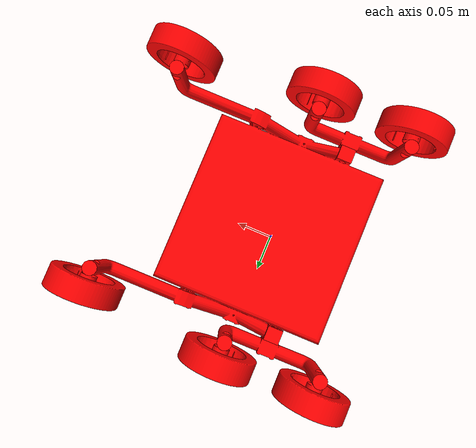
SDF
<?xml version="1.0" encoding="utf-8"?>
<sdf version="1.5">
  <model name="Swarm_rocker_bogie">
    <pose>0 0 0.126373635434956 0 0 0</pose>
    <plugin name="clock" filename="libgz_clock.so">
      <topic>/gazebo/frc/time</topic>
    </plugin>
    <link name="b">
      <gravity>1</gravity>
      <self_collide>0</self_collide>
      <pose>0.0148104090723811 -0.00163168364829588 0.0199908082385083 -1.5707963267949 0 1.5707963267949</pose>
      <must_be_base_link>1</must_be_base_link>
      <velocity_decay>
        <linear>0</linear>
        <angular>0</angular>
      </velocity_decay>
      <inertial>
        <mass>7.2356492385504</mass>
        <pose>0 0 0 0 0 0</pose>
        <inertia>
          <ixx>0.0267670908195039</ixx>
          <ixy>1.53659995127757E-05</ixy>
          <ixz>8.55041313934179E-06</ixz>
          <iyy>0.065736382702074</iyy>
          <iyz>0.0015539855739102</iyz>
          <izz>0.0425441069655975</izz>
        </inertia>
      </inertial>
      <collision name="b_collision">
        <pose>0.152453905827921 -0.0302156363033254 -2.14221795320658 0 0 0</pose>
        <geometry>
          <mesh>
            <scale>1 1 1</scale>
            <uri>model://Swarm_rocker_bogie/meshes/b_col.STL</uri>
          </mesh>
        </geometry>
        <surface>
          <contact>
            <ode />
          </contact>
          <friction>
            <ode>
              <mu>0</mu>
              <mu2>0</mu2>
            </ode>
          </friction>
        </surface>
      </collision>
      <visual name="b_visual">
        <pose>0.152453905827921 -0.0302156363033254 -2.14221795320658 0 0 0</pose>
        <material>
          <ambient>1 0 0 1</ambient>
          <diffuse>1 0 0 1</diffuse>
        </material>
        <geometry>
          <mesh>
            <scale>1 1 1</scale>
            <uri>model://Swarm_rocker_bogie/meshes/b.STL</uri>
          </mesh>
        </geometry>
      </visual>
    </link>
    <link name="rocker1">
      <gravity>1</gravity>
      <self_collide>0</self_collide>
      <pose>-0.0400993551230209 -0.125631922733185 0.0504696530971495 -1.5707963267949 0 1.5707963267949</pose>
      <must_be_base_link>0</must_be_base_link>
      <velocity_decay>
        <linear>0</linear>
        <angular>0</angular>
      </velocity_decay>
      <inertial>
        <mass>0.285057110437184</mass>
        <pose>0 0 0 0 0 0</pose>
        <inertia>
          <ixx>0.000610157709332902</ixx>
          <ixy>2.59133264708521E-10</ixy>
          <ixz>4.18845911356162E-12</ixz>
          <iyy>0.000492155340392255</iyy>
          <iyz>8.78414871051108E-06</iyz>
          <izz>0.000126413081570755</izz>
        </inertia>
      </inertial>
      <collision name="rocker1_collision">
        <pose>0.276454144912809 0.0002632085553158 -2.19712771740198 0 0 0</pose>
        <geometry>
          <mesh>
            <scale>1 1 1</scale>
            <uri>model://Swarm_rocker_bogie/meshes/rocker1_col.STL</uri>
          </mesh>
        </geometry>
        <surface>
          <contact>
            <ode />
          </contact>
          <friction>
            <ode>
              <mu>0</mu>
              <mu2>0</mu2>
            </ode>
          </friction>
        </surface>
      </collision>
      <visual name="rocker1_visual">
        <pose>0.276454144912809 0.0002632085553158 -2.19712771740198 0 0 0</pose>
        <material>
          <ambient>1 0 0 1</ambient>
          <diffuse>1 0 0 1</diffuse>
        </material>
        <geometry>
          <mesh>
            <scale>1 1 1</scale>
            <uri>model://Swarm_rocker_bogie/meshes/rocker1.STL</uri>
          </mesh>
        </geometry>
      </visual>
    </link>
    <joint name="b-rocker1" type="revolute">
      <parent>b</parent>
      <child>rocker1</child>
      <pose>2.22044604925031E-16 0.0169527314428989 -0.000406924873752157 0 0 0</pose>
      <axis>
        <xyz>1 0 0</xyz>
        <dynamics>
          <damping>0</damping>
          <friction>0</friction>
        </dynamics>
        <limit>
          <upper>0</upper>
          <lower>0</lower>
          <effort>1</effort>
        </limit>
      </axis>
    </joint>
    <link name="rocker2">
      <gravity>1</gravity>
      <self_collide>0</self_collide>
      <pose>-0.0407351751930216 0.122368077312239 0.0501480848266612 -1.5707963267949 0 1.5707963267949</pose>
      <must_be_base_link>0</must_be_base_link>
      <velocity_decay>
        <linear>0</linear>
        <angular>0</angular>
      </velocity_decay>
      <inertial>
        <mass>0.285057103363602</mass>
        <pose>0 0 0 0 0 0</pose>
        <inertia>
          <ixx>0.00061015769502788</ixx>
          <ixy>2.59610103472399E-10</ixy>
          <ixz>9.06369873589311E-12</ixz>
          <iyy>0.000491424184306851</iyy>
          <iyz>1.85482244309908E-05</iyz>
          <izz>0.00012714422308182</izz>
        </inertia>
      </inertial>
      <collision name="rocker2_collision">
        <pose>0.028454144867386 -5.83597151725061E-05 -2.19776353747198 0 0 0</pose>
        <geometry>
          <mesh>
            <scale>1 1 1</scale>
            <uri>model://Swarm_rocker_bogie/meshes/rocker2_col.STL</uri>
          </mesh>
        </geometry>
        <surface>
          <contact>
            <ode />
          </contact>
          <friction>
            <ode>
              <mu>0</mu>
              <mu2>0</mu2>
            </ode>
          </friction>
        </surface>
      </collision>
      <visual name="rocker2_visual">
        <pose>0.028454144867386 -5.83597151725061E-05 -2.19776353747198 0 0 0</pose>
        <material>
          <ambient>1 0 0 1</ambient>
          <diffuse>1 0 0 1</diffuse>
        </material>
        <geometry>
          <mesh>
            <scale>1 1 1</scale>
            <uri>model://Swarm_rocker_bogie/meshes/rocker2.STL</uri>
          </mesh>
        </geometry>
      </visual>
    </link>
    <joint name="b-rocker2" type="revolute">
      <parent>b</parent>
      <child>rocker2</child>
      <pose>2.77555756156289E-17 0.0169357874937826 -0.000860104389454719 0 0 0</pose>
      <axis>
        <xyz>1 8.67361737988403E-16 0</xyz>
        <dynamics>
          <damping>0</damping>
          <friction>0</friction>
        </dynamics>
        <limit>
          <upper>0</upper>
          <lower>0</lower>
          <effort>1</effort>
        </limit>
      </axis>
    </joint>
    <link name="W3">
      <gravity>1</gravity>
      <self_collide>0</self_collide>
      <pose>0.00903318787032381 -0.144940145252918 0.0872015375891093 -1.5707963267949 0 1.5707963267949</pose>
      <must_be_base_link>0</must_be_base_link>
      <velocity_decay>
        <linear>0</linear>
        <angular>0</angular>
      </velocity_decay>
      <inertial>
        <mass>0.0608615422370916</mass>
        <pose>0 0 0 0 0 0</pose>
        <inertia>
          <ixx>6.09504641301841E-05</ixx>
          <ixy>8.12714228438774E-12</ixy>
          <ixz>2.13553579959487E-11</ixz>
          <iyy>3.32741641080832E-05</iyy>
          <iyz>9.04600273464406E-11</iyz>
          <izz>3.32742375335139E-05</izz>
        </inertia>
      </inertial>
      <collision name="W3_collision">
        <pose>0.295762367432542 0.0369950930472756 -2.14799517440863 0 0 0</pose>
        <geometry>
          <mesh>
            <scale>1 1 1</scale>
            <uri>model://Swarm_rocker_bogie/meshes/W3_col.STL</uri>
          </mesh>
        </geometry>
        <surface>
          <contact>
            <ode />
          </contact>
          <friction>
            <ode>
              <mu>0</mu>
              <mu2>0</mu2>
            </ode>
          </friction>
        </surface>
      </collision>
      <visual name="W3_visual">
        <pose>0.295762367432542 0.0369950930472756 -2.14799517440863 0 0 0</pose>
        <material>
          <ambient>1 0 0 1</ambient>
          <diffuse>1 0 0 1</diffuse>
        </material>
        <geometry>
          <mesh>
            <scale>1 1 1</scale>
            <uri>model://Swarm_rocker_bogie/meshes/W3.STL</uri>
          </mesh>
        </geometry>
      </visual>
    </link>
    <joint name="rocker1-W3" type="revolute">
      <parent>rocker1</parent>
      <child>W3</child>
      <pose>3.33066907387547E-16 -9.46985707836467E-08 -1.64010659720049E-07 0 0 0</pose>
      <axis>
        <xyz>1 0 0</xyz>
        <dynamics>
          <damping>0</damping>
          <friction>0</friction>
        </dynamics>
        <limit>
          <upper>0</upper>
          <lower>0</lower>
          <effort>1</effort>
        </limit>
      </axis>
    </joint>
    <link name="6">
      <gravity>1</gravity>
      <self_collide>0</self_collide>
      <pose>-0.0909380162156253 -0.144940145252918 0.0848018806124958 -1.5707963267949 0 1.5707963267949</pose>
      <must_be_base_link>0</must_be_base_link>
      <velocity_decay>
        <linear>0</linear>
        <angular>0</angular>
      </velocity_decay>
      <inertial>
        <mass>0.0608615422370905</mass>
        <pose>0 0 0 0 0 0</pose>
        <inertia>
          <ixx>6.09504641301837E-05</ixx>
          <ixy>8.12714232985873E-12</ixy>
          <ixz>2.13553579132461E-11</ixz>
          <iyy>3.32741641080829E-05</iyy>
          <iyz>9.04600271716098E-11</iyz>
          <izz>3.32742375335137E-05</izz>
        </inertia>
      </inertial>
      <collision name="6_collision">
        <pose>0.295762367432542 0.0345954360706621 -2.24796637849458 0 0 0</pose>
        <geometry>
          <mesh>
            <scale>1 1 1</scale>
            <uri>model://Swarm_rocker_bogie/meshes/6_col.STL</uri>
          </mesh>
        </geometry>
        <surface>
          <contact>
            <ode />
          </contact>
          <friction>
            <ode>
              <mu>0</mu>
              <mu2>0</mu2>
            </ode>
          </friction>
        </surface>
      </collision>
      <visual name="6_visual">
        <pose>0.295762367432542 0.0345954360706621 -2.24796637849458 0 0 0</pose>
        <material>
          <ambient>1 0 0 1</ambient>
          <diffuse>1 0 0 1</diffuse>
        </material>
        <geometry>
          <mesh>
            <scale>1 1 1</scale>
            <uri>model://Swarm_rocker_bogie/meshes/6.STL</uri>
          </mesh>
        </geometry>
      </visual>
    </link>
    <joint name="rocker1-6" type="revolute">
      <parent>rocker1</parent>
      <child>6</child>
      <pose>2.22044604925031E-16 -9.46985711305914E-08 -1.64010659720049E-07 0 0 0</pose>
      <axis>
        <xyz>1 0 0</xyz>
        <dynamics>
          <damping>0</damping>
          <friction>0</friction>
        </dynamics>
        <limit>
          <upper>0</upper>
          <lower>0</lower>
          <effort>1</effort>
        </limit>
      </axis>
    </joint>
    <link name="W9">
      <gravity>1</gravity>
      <self_collide>0</self_collide>
      <pose>0.155663631744023 0.125676422595489 0.0918241330060651 -1.5707963267949 0 1.5707963267949</pose>
      <must_be_base_link>0</must_be_base_link>
      <velocity_decay>
        <linear>0</linear>
        <angular>0</angular>
      </velocity_decay>
      <inertial>
        <mass>0.060861542237092</mass>
        <pose>0 0 0 0 0 0</pose>
        <inertia>
          <ixx>6.09504641301844E-05</ixx>
          <ixy>1.66338032994328E-11</ixy>
          <ixz>1.56658336471032E-11</ixz>
          <iyy>3.32741629781163E-05</iyy>
          <iyz>8.99931742850016E-11</iyz>
          <izz>3.3274238663481E-05</izz>
        </inertia>
      </inertial>
      <collision name="W9_collision">
        <pose>0.025145799584136 0.0416176884642315 -2.00136473053493 0 0 0</pose>
        <geometry>
          <mesh>
            <scale>1 1 1</scale>
            <uri>model://Swarm_rocker_bogie/meshes/W9_col.STL</uri>
          </mesh>
        </geometry>
        <surface>
          <contact>
            <ode />
          </contact>
          <friction>
            <ode>
              <mu>0</mu>
              <mu2>0</mu2>
            </ode>
          </friction>
        </surface>
      </collision>
      <visual name="W9_visual">
        <pose>0.025145799584136 0.0416176884642315 -2.00136473053493 0 0 0</pose>
        <material>
          <ambient>1 0 0 1</ambient>
          <diffuse>1 0 0 1</diffuse>
        </material>
        <geometry>
          <mesh>
            <scale>1 1 1</scale>
            <uri>model://Swarm_rocker_bogie/meshes/W9.STL</uri>
          </mesh>
        </geometry>
      </visual>
    </link>
    <joint name="b-W9" type="revolute">
      <parent>b</parent>
      <child>W9</child>
      <pose>3.12250225675825E-17 -1.15422100786799E-07 -1.50150107014468E-07 0 0 0</pose>
      <axis>
        <xyz>1 0 0</xyz>
        <dynamics>
          <damping>0</damping>
          <friction>0</friction>
        </dynamics>
        <limit>
          <upper>0</upper>
          <lower>0</lower>
          <effort>1</effort>
        </limit>
      </axis>
    </joint>
    <link name="W1">
      <gravity>1</gravity>
      <self_collide>0</self_collide>
      <pose>0.156211605625439 -0.128940145252918 0.0908958936113698 -1.5707963267949 0 1.5707963267949</pose>
      <must_be_base_link>0</must_be_base_link>
      <velocity_decay>
        <linear>0</linear>
        <angular>0</angular>
      </velocity_decay>
      <inertial>
        <mass>0.0608615422370927</mass>
        <pose>0 0 0 0 0 0</pose>
        <inertia>
          <ixx>6.09504641301844E-05</ixx>
          <ixy>9.36432820620049E-12</ixy>
          <ixz>2.08425314397582E-11</ixz>
          <iyy>3.327411039804E-05</iyy>
          <iyz>3.68044121993085E-11</iyz>
          <izz>3.32742912435574E-05</izz>
        </inertia>
      </inertial>
      <collision name="W1_collision">
        <pose>0.279762367432542 0.0406894490695362 -2.00081675665352 0 0 0</pose>
        <geometry>
          <mesh>
            <scale>1 1 1</scale>
            <uri>model://Swarm_rocker_bogie/meshes/W1_col.STL</uri>
          </mesh>
        </geometry>
        <surface>
          <contact>
            <ode />
          </contact>
          <friction>
            <ode>
              <mu>0</mu>
              <mu2>0</mu2>
            </ode>
          </friction>
        </surface>
      </collision>
      <visual name="W1_visual">
        <pose>0.279762367432542 0.0406894490695362 -2.00081675665352 0 0 0</pose>
        <material>
          <ambient>1 0 0 1</ambient>
          <diffuse>1 0 0 1</diffuse>
        </material>
        <geometry>
          <mesh>
            <scale>1 1 1</scale>
            <uri>model://Swarm_rocker_bogie/meshes/W1.STL</uri>
          </mesh>
        </geometry>
      </visual>
    </link>
    <joint name="b-W1" type="revolute">
      <parent>b</parent>
      <child>W1</child>
      <pose>2.77555756156289E-16 4.91037790845139E-08 -1.82910182111584E-07 0 0 0</pose>
      <axis>
        <xyz>1 0 0</xyz>
        <dynamics>
          <damping>0</damping>
          <friction>0</friction>
        </dynamics>
        <limit>
          <upper>0</upper>
          <lower>0</lower>
          <effort>1</effort>
        </limit>
      </axis>
    </joint>
    <link name="W8">
      <gravity>1</gravity>
      <self_collide>0</self_collide>
      <pose>-0.0924736815065925 0.141676422595489 0.0831085406815657 -1.5707963267949 0 1.5707963267949</pose>
      <must_be_base_link>0</must_be_base_link>
      <velocity_decay>
        <linear>0</linear>
        <angular>0</angular>
      </velocity_decay>
      <inertial>
        <mass>0.0608615422370924</mass>
        <pose>0 0 0 0 0 0</pose>
        <inertia>
          <ixx>6.09504641301842E-05</ixx>
          <ixy>1.93504024027956E-11</ixy>
          <ixz>1.21516946315306E-11</ixz>
          <iyy>3.32741999752062E-05</iyy>
          <iyz>9.76223591252615E-11</iyz>
          <izz>3.32742016663912E-05</izz>
        </inertia>
      </inertial>
      <collision name="W8_collision">
        <pose>0.00914579958413583 0.032902096139732 -2.24950204378555 0 0 0</pose>
        <geometry>
          <mesh>
            <scale>1 1 1</scale>
            <uri>model://Swarm_rocker_bogie/meshes/W8_col.STL</uri>
          </mesh>
        </geometry>
        <surface>
          <contact>
            <ode />
          </contact>
          <friction>
            <ode>
              <mu>0</mu>
              <mu2>0</mu2>
            </ode>
          </friction>
        </surface>
      </collision>
      <visual name="W8_visual">
        <pose>0.00914579958413583 0.032902096139732 -2.24950204378555 0 0 0</pose>
        <material>
          <ambient>1 0 0 1</ambient>
          <diffuse>1 0 0 1</diffuse>
        </material>
        <geometry>
          <mesh>
            <scale>1 1 1</scale>
            <uri>model://Swarm_rocker_bogie/meshes/W8.STL</uri>
          </mesh>
        </geometry>
      </visual>
    </link>
    <joint name="rocker2-W8" type="revolute">
      <parent>rocker2</parent>
      <child>W8</child>
      <pose>1.73472347597681E-18 -1.42290941695933E-07 -1.24982413751695E-07 0 0 0</pose>
      <axis>
        <xyz>1 9.9127055770103E-16 0</xyz>
        <dynamics>
          <damping>0</damping>
          <friction>0</friction>
        </dynamics>
        <limit>
          <upper>0</upper>
          <lower>0</lower>
          <effort>1</effort>
        </limit>
      </axis>
    </joint>
    <link name="W7">
      <gravity>1</gravity>
      <self_collide>0</self_collide>
      <pose>0.00739766536740794 0.141676422595489 0.0881809410057307 -1.5707963267949 0 1.5707963267949</pose>
      <must_be_base_link>0</must_be_base_link>
      <velocity_decay>
        <linear>0</linear>
        <angular>0</angular>
      </velocity_decay>
      <inertial>
        <mass>0.0608615422370905</mass>
        <pose>0 0 0 0 0 0</pose>
        <inertia>
          <ixx>6.09504641301836E-05</ixx>
          <ixy>1.9920416416641E-11</ixy>
          <ixz>1.11927997966342E-11</ixz>
          <iyy>3.3274283229995E-05</iyy>
          <iyz>5.2340847733763E-11</iyz>
          <izz>3.32741184116015E-05</izz>
        </inertia>
      </inertial>
      <collision name="W7_collision">
        <pose>0.00914579958413601 0.037974496463897 -2.14963069691155 0 0 0</pose>
        <geometry>
          <mesh>
            <scale>1 1 1</scale>
            <uri>model://Swarm_rocker_bogie/meshes/W7_col.STL</uri>
          </mesh>
        </geometry>
        <surface>
          <contact>
            <ode />
          </contact>
          <friction>
            <ode>
              <mu>0</mu>
              <mu2>0</mu2>
            </ode>
          </friction>
        </surface>
      </collision>
      <visual name="W7_visual">
        <pose>0.00914579958413601 0.037974496463897 -2.14963069691155 0 0 0</pose>
        <material>
          <ambient>1 0 0 1</ambient>
          <diffuse>1 0 0 1</diffuse>
        </material>
        <geometry>
          <mesh>
            <scale>1 1 1</scale>
            <uri>model://Swarm_rocker_bogie/meshes/W7.STL</uri>
          </mesh>
        </geometry>
      </visual>
    </link>
    <joint name="rocker2-W7" type="revolute">
      <parent>rocker2</parent>
      <child>W7</child>
      <pose>0 1.77779226562258E-07 -6.52829412750577E-08 0 0 0</pose>
      <axis>
        <xyz>1 0 0</xyz>
        <dynamics>
          <damping>0</damping>
          <friction>0</friction>
        </dynamics>
        <limit>
          <upper>0</upper>
          <lower>0</lower>
          <effort>1</effort>
        </limit>
      </axis>
    </joint>
  </model>
</sdf>
